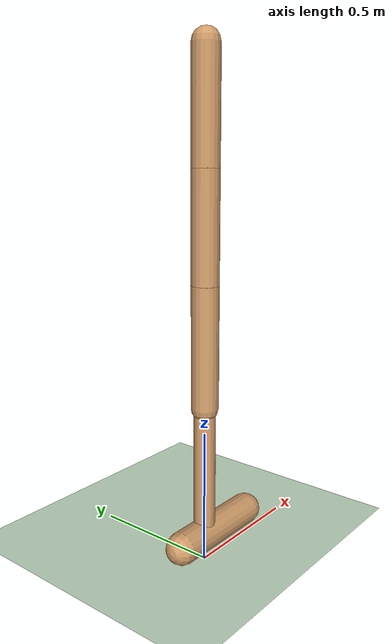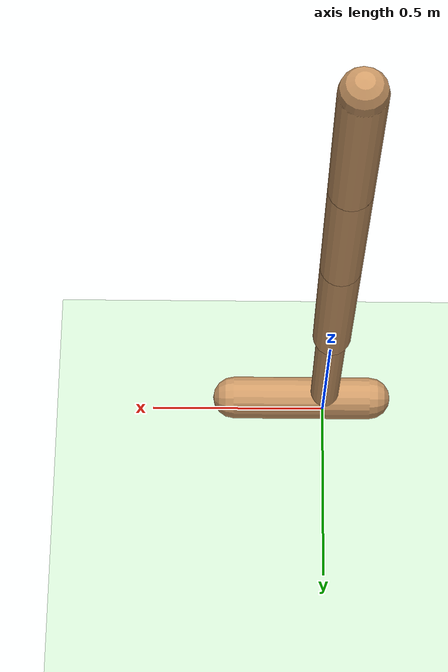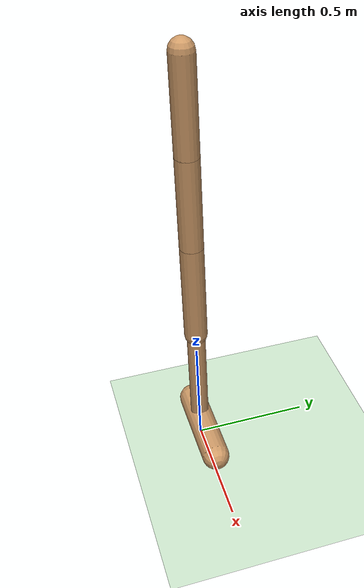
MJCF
<mujoco model="hopper">
  <compiler angle="degree" coordinate="global" inertiafromgeom="true"/>
  <default>
    <joint armature="1" damping="1" limited="true"/>
    <geom conaffinity="1" condim="1" contype="1" margin="0.001" material="geom" rgba="0.8 0.6 .4 1" solimp=".8 .8 .01" solref=".02 1"/>
    <motor ctrllimited="true" ctrlrange="-.4 .4"/>
  </default>
  <option integrator="RK4" timestep="0.002"/>
  <visual>
    <map znear="0.02"/>
  </visual>
  <worldbody>
    <light cutoff="100" diffuse="1 1 1" dir="-0 0 -1.3" directional="true" exponent="1" pos="0 0 1.3" specular=".1 .1 .1"/>
    <geom conaffinity="1" condim="3" name="floor" pos="0 0 0" rgba="0.8 0.9 0.8 1" size="20 20 .125" type="plane" material="MatPlane"/>
    <body name="torso" pos="0 0 1.25">
      <camera name="track" mode="trackcom" pos="0 -3 1" xyaxes="1 0 0 0 0 1"/>
      <joint armature="0" axis="1 0 0" damping="0" limited="false" name="rootx" pos="0 0 0" stiffness="0" type="slide"/>
      <joint armature="0" axis="0 0 1" damping="0" limited="false" name="rootz" pos="0 0 0" ref="1.25" stiffness="0" type="slide"/>
      <joint armature="0" axis="0 1 0" damping="0" limited="false" name="rooty" pos="0 0 1.25" stiffness="0" type="hinge"/>
      <geom friction="0.9" fromto="0 0 1.45 0 0 1.05" name="torso_geom" size="0.05" type="capsule"/>

      <body name="thigh" pos="0 0 1.05">
        <joint axis="0 -1 0" name="thigh_joint" pos="0 0 1.05" range="-150 0" type="hinge"/>
        <geom friction="0.9" fromto="0 0 1.05 0 0 0.6" name="thigh_geom" size="0.05" type="capsule"/>
        <body name="leg" pos="0 0 0.35">
          <joint axis="0 -1 0" name="leg_joint" pos="0 0 0.6" range="-150 0" type="hinge"/>
          <geom friction="0.9" fromto="0 0 0.6 0 0 0.1" name="leg_geom" size="0.04" type="capsule"/>
          <body name="foot" pos="0.13 0 0">
            <joint axis="0 -1 0" name="foot_joint" pos="0 0 0.1" range="-45 45" type="hinge"/>
            <geom friction="2.0" fromto="-0.13 0 0.1 0.26 0 0.1" name="foot_geom" size="0.06" type="capsule"/>

          </body>
        </body>
      </body>
      <body name="thigh1" pos="0 0 1.45">
          <joint axis="0 -1 0" name="thigh_joint1" pos="0 0 1.45" range="-150 0" type="hinge"/>
          <geom friction="0.9" fromto="0 0 1.45 0 0 1.85" name="thigh_geom1" size="0.05" type="capsule"/>
      </body>
    </body>
  </worldbody>
  <actuator>
    <motor ctrllimited="true" ctrlrange="-1.0 1.0" gear="200.0" joint="thigh_joint"/>
    <motor ctrllimited="true" ctrlrange="-1.0 1.0" gear="200.0" joint="leg_joint"/>
    <motor ctrllimited="true" ctrlrange="-1.0 1.0" gear="200.0" joint="foot_joint"/>
    <motor ctrllimited="true" ctrlrange="-1.0 1.0" gear="200.0" joint="thigh_joint1"/>
  </actuator>
    <asset>
        <texture type="skybox" builtin="gradient" rgb1=".4 .5 .6" rgb2="0 0 0"
            width="100" height="100"/>
        <texture builtin="flat" height="1278" mark="cross" markrgb="1 1 1" name="texgeom" random="0.01" rgb1="0.8 0.6 0.4" rgb2="0.8 0.6 0.4" type="cube" width="127"/>
        <texture builtin="checker" height="100" name="texplane" rgb1="0 0 0" rgb2="0.8 0.8 0.8" type="2d" width="100"/>
        <material name="MatPlane" reflectance="0.5" shininess="1" specular="1" texrepeat="60 60" texture="texplane"/>
        <material name="geom" texture="texgeom" texuniform="true"/>
    </asset>
</mujoco>
